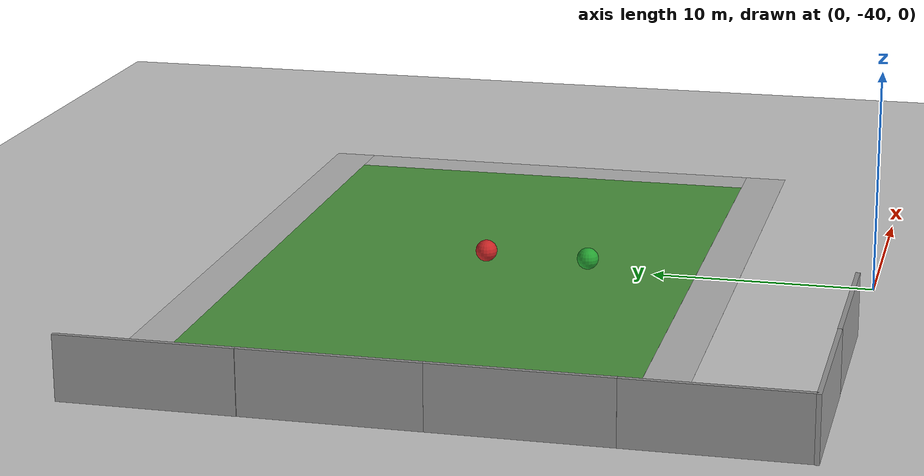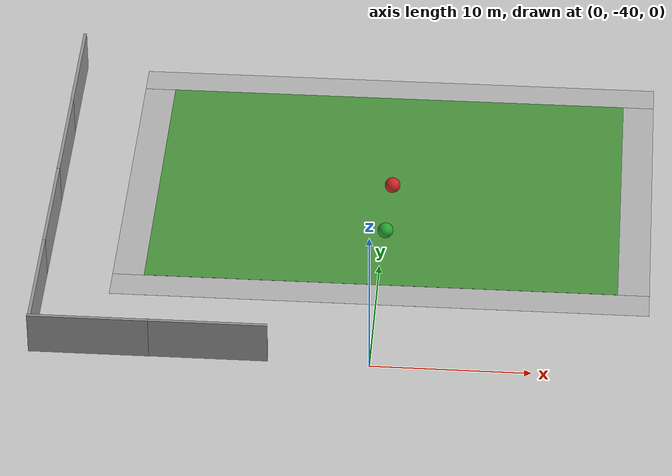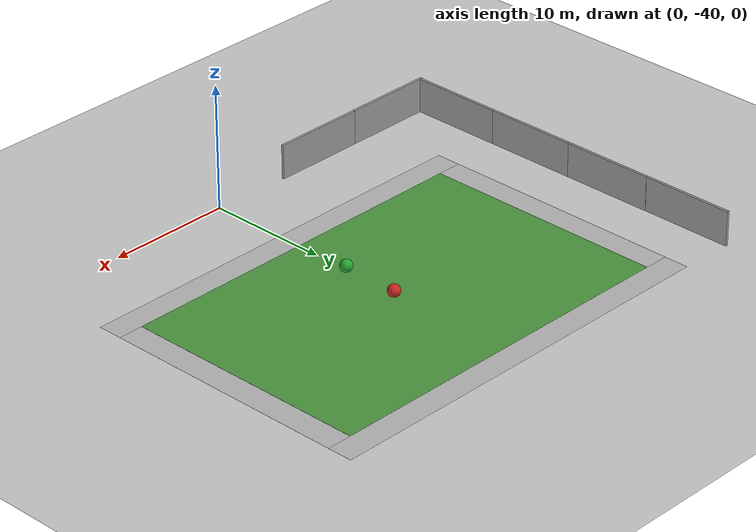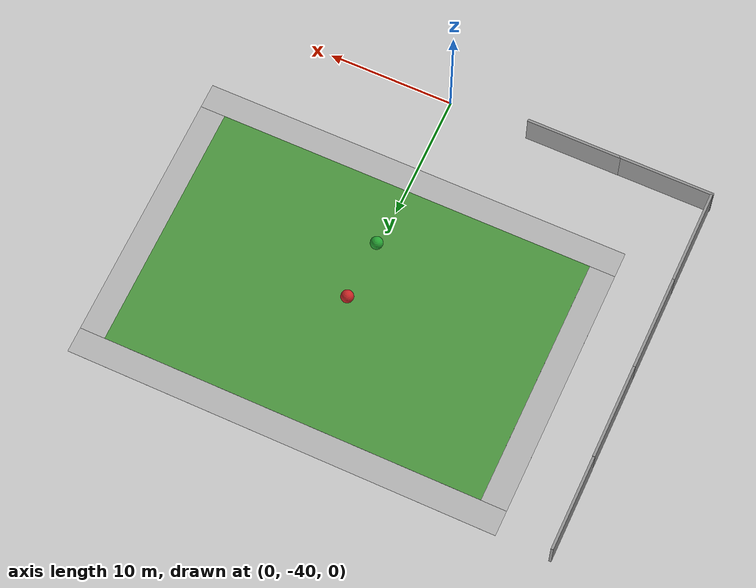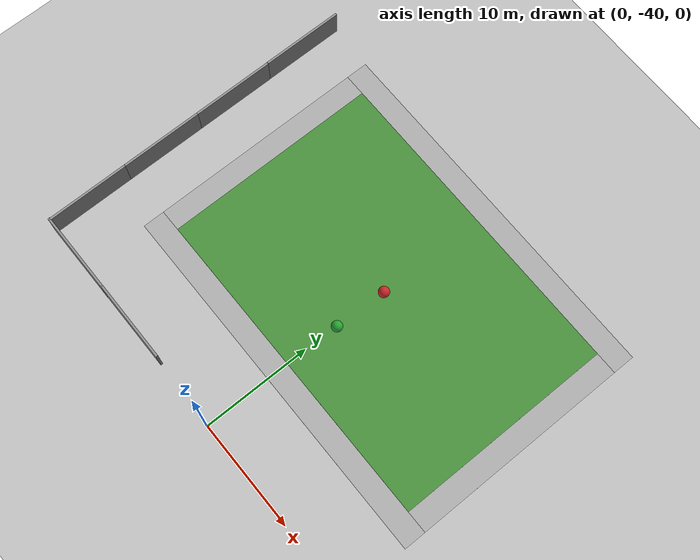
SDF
<sdf version="1.6">
 <world name="default">
  <model name="ground_plane">
   <static>1</static>
   <link name="link">
    <collision name="collision">
     <geometry><plane><normal>0 0 1</normal><size>100 100</size></plane></geometry>
     <surface>
      <contact><collide_bitmask>65535</collide_bitmask></contact>
      <friction><ode><mu>100</mu><mu2>50</mu2></ode></friction>
     </surface>
    </collision>
    <visual name="visual">
     <cast_shadows>0</cast_shadows>
     <geometry><plane><normal>0 0 1</normal><size>100 100</size></plane></geometry>
     <material>
      <script><uri>file://media/materials/scripts/gazebo.material</uri><name>Gazebo/Grey</name></script>
     </material>
    </visual>
   </link>
  </model>
  <model name="unit_sphere">
   <pose>0.359292 -22.1088 0.51 0 -0 0</pose>
   <link name="link">
    <inertial>
     <mass>1</mass>
     <inertia><ixx>0.1</ixx><ixy>0</ixy><ixz>0</ixz><iyy>0.1</iyy><iyz>0</iyz><izz>0.1</izz></inertia>
    </inertial>
    <collision name="collision"><geometry><sphere><radius>0.5</radius></sphere></geometry></collision>
    <visual name="visual">
     <geometry><sphere><radius>0.5</radius></sphere></geometry>
     <material>
      <script><name>Gazebo/Red</name><uri>file://media/materials/scripts/gazebo.material</uri></script>
     </material>
    </visual>
   </link>
  </model>
  <model name="unit_sphere_0">
   <pose>0.196503 -26.9221 0.51 0 -0 0</pose>
   <link name="link">
    <inertial>
     <mass>1</mass>
     <inertia><ixx>0.1</ixx><ixy>0</ixy><ixz>0</ixz><iyy>0.1</iyy><iyz>0</iyz><izz>0.1</izz></inertia>
    </inertial>
    <collision name="collision"><geometry><sphere><radius>0.5</radius></sphere></geometry></collision>
    <visual name="visual">
     <geometry><sphere><radius>0.5</radius></sphere></geometry>
     <material>
      <script><name>Gazebo/Green</name><uri>file://media/materials/scripts/gazebo.material</uri></script>
     </material>
    </visual>
   </link>
  </model>
  <model name="grey_wall">
   <static>1</static>
   <link name="link">
    <pose>0 0 1.4 0 -0 0</pose>
    <collision name="collision"><geometry><box><size>7.5 0.2 2.8</size></box></geometry></collision>
    <visual name="visual">
     <cast_shadows>0</cast_shadows>
     <geometry><box><size>7.5 0.2 2.8</size></box></geometry>
     <material>
      <script>
       <uri>model://grey_wall/materials/scripts</uri>
       <uri>model://grey_wall/materials/textures</uri>
       <name>vrc/grey_wall</name>
      </script>
     </material>
    </visual>
   </link>
   <pose>-10.0588 -39.8051 0 0 -0 0</pose>
  </model>
  <model name="robocup_3d_field">
   <static>1</static>
   <link name="field">
    <pose>0 0 0.01 0 -0 0</pose>
    <collision name="collision">
     <geometry><plane><normal>0 0 1</normal><size>30 20</size></plane></geometry>
     <surface><friction><ode><mu>100</mu><mu2>50</mu2></ode></friction></surface>
    </collision>
    <visual name="base1">
     <pose>0 11 0.001 0 -0 0</pose>
     <cast_shadows>0</cast_shadows>
     <geometry><plane><normal>0 0 1</normal><size>34 2</size></plane></geometry>
     <material>
      <script>
       <uri>model://robocup_3Dsim_field/materials/scripts/</uri>
       <uri>model://robocup_3Dsim_field/materials/textures/</uri>
       <name>RoboCup/FieldBorder</name>
      </script>
     </material>
    </visual>
    <visual name="base2">
     <pose>0 -11 0.001 0 -0 0</pose>
     <cast_shadows>0</cast_shadows>
     <geometry><plane><normal>0 0 1</normal><size>34 2</size></plane></geometry>
     <material>
      <script>
       <uri>model://robocup_3Dsim_field/materials/scripts/</uri>
       <uri>model://robocup_3Dsim_field/materials/textures/</uri>
       <name>RoboCup/FieldBorder</name>
      </script>
     </material>
    </visual>
    <visual name="base3">
     <pose>16 0 0.001 0 -0 0</pose>
     <cast_shadows>0</cast_shadows>
     <geometry><plane><normal>0 0 1</normal><size>2 20</size></plane></geometry>
     <material>
      <script>
       <uri>model://robocup_3Dsim_field/materials/scripts/</uri>
       <uri>model://robocup_3Dsim_field/materials/textures/</uri>
       <name>RoboCup/FieldBorder</name>
      </script>
     </material>
    </visual>
    <visual name="base4">
     <pose>-16 0 0.001 0 -0 0</pose>
     <cast_shadows>0</cast_shadows>
     <geometry><plane><normal>0 0 1</normal><size>2 20</size></plane></geometry>
     <material>
      <script>
       <uri>model://robocup_3Dsim_field/materials/scripts/</uri>
       <uri>model://robocup_3Dsim_field/materials/textures/</uri>
       <name>RoboCup/FieldBorder</name>
      </script>
     </material>
    </visual>
    <visual name="carpet">
     <cast_shadows>0</cast_shadows>
     <geometry><plane><normal>0 0 1</normal><size>30 20</size></plane></geometry>
     <material>
      <script>
       <uri>model://robocup_3Dsim_field/materials/scripts/</uri>
       <uri>model://robocup_3Dsim_field/materials/textures/</uri>
       <name>RoboCup/Grass</name>
      </script>
     </material>
    </visual>
   </link>
   <pose>0.164442 -21.9229 0 0 -0 0</pose>
  </model>
  <model name="grey_wall_clone">
   <static>1</static>
   <link name="link">
    <pose>0 0 1.4 0 -0 0</pose>
    <collision name="collision"><geometry><box><size>7.5 0.2 2.8</size></box></geometry></collision>
    <visual name="visual">
     <cast_shadows>0</cast_shadows>
     <geometry><box><size>7.5 0.2 2.8</size></box></geometry>
     <material>
      <script>
       <uri>model://grey_wall/materials/scripts</uri>
       <uri>model://grey_wall/materials/textures</uri>
       <name>vrc/grey_wall</name>
      </script>
     </material>
    </visual>
   </link>
   <pose>-17.4403 -39.8159 0 0 -0 0</pose>
  </model>
  <model name="grey_wall_clone_clone">
   <static>1</static>
   <link name="link">
    <pose>0 0 1.4 0 -0 0</pose>
    <collision name="collision"><geometry><box><size>7.5 0.2 2.8</size></box></geometry></collision>
    <visual name="visual">
     <cast_shadows>0</cast_shadows>
     <geometry><box><size>7.5 0.2 2.8</size></box></geometry>
     <material>
      <script>
       <uri>model://grey_wall/materials/scripts</uri>
       <uri>model://grey_wall/materials/textures</uri>
       <name>vrc/grey_wall</name>
      </script>
     </material>
    </visual>
   </link>
   <pose>-21.0512 -36.0287 0 0 -0 1.57126</pose>
  </model>
  <model name="grey_wall_clone_clone_clone">
   <static>1</static>
   <link name="link">
    <pose>0 0 1.4 0 -0 0</pose>
    <collision name="collision"><geometry><box><size>7.5 0.2 2.8</size></box></geometry></collision>
    <visual name="visual">
     <cast_shadows>0</cast_shadows>
     <geometry><box><size>7.5 0.2 2.8</size></box></geometry>
     <material>
      <script>
       <uri>model://grey_wall/materials/scripts</uri>
       <uri>model://grey_wall/materials/textures</uri>
       <name>vrc/grey_wall</name>
      </script>
     </material>
    </visual>
   </link>
   <pose>-21.0552 -28.5259 0 0 -0 1.57126</pose>
  </model>
  <model name="grey_wall_clone_clone_clone_0">
   <static>1</static>
   <link name="link">
    <pose>0 0 1.4 0 -0 0</pose>
    <collision name="collision"><geometry><box><size>7.5 0.2 2.8</size></box></geometry></collision>
    <visual name="visual">
     <cast_shadows>0</cast_shadows>
     <geometry><box><size>7.5 0.2 2.8</size></box></geometry>
     <material>
      <script>
       <uri>model://grey_wall/materials/scripts</uri>
       <uri>model://grey_wall/materials/textures</uri>
       <name>vrc/grey_wall</name>
      </script>
     </material>
    </visual>
   </link>
   <pose>-21.061 -21.0415 0 0 -0 1.57126</pose>
  </model>
  <model name="grey_wall_clone_clone_clone_1">
   <static>1</static>
   <link name="link">
    <pose>0 0 1.4 0 -0 0</pose>
    <collision name="collision"><geometry><box><size>7.5 0.2 2.8</size></box></geometry></collision>
    <visual name="visual">
     <cast_shadows>0</cast_shadows>
     <geometry><box><size>7.5 0.2 2.8</size></box></geometry>
     <material>
      <script>
       <uri>model://grey_wall/materials/scripts</uri>
       <uri>model://grey_wall/materials/textures</uri>
       <name>vrc/grey_wall</name>
      </script>
     </material>
    </visual>
   </link>
   <pose>-21.0793 -13.5291 0 0 -0 1.57126</pose>
  </model>
 </world>
</sdf>
